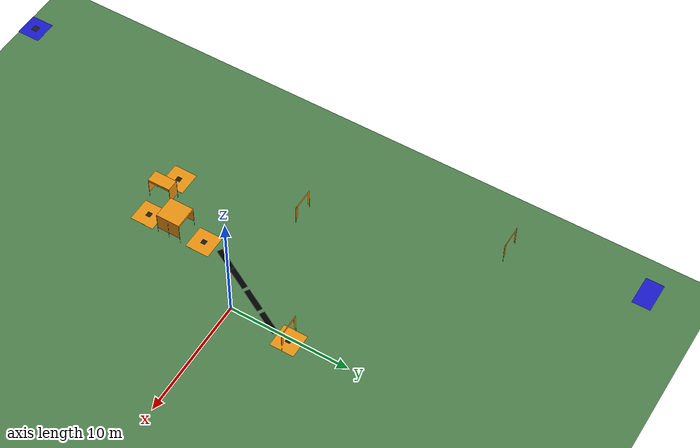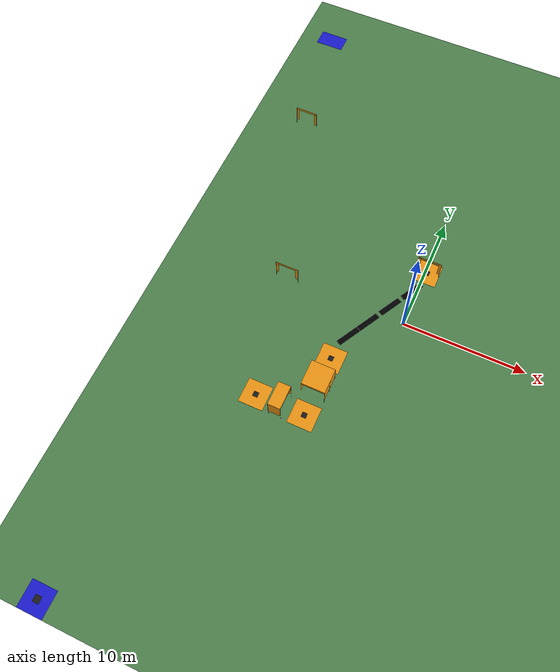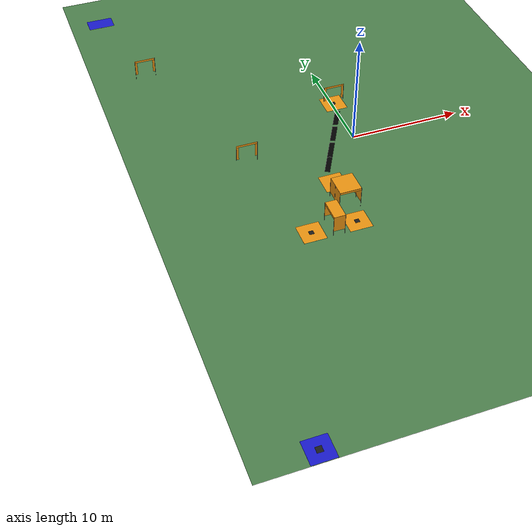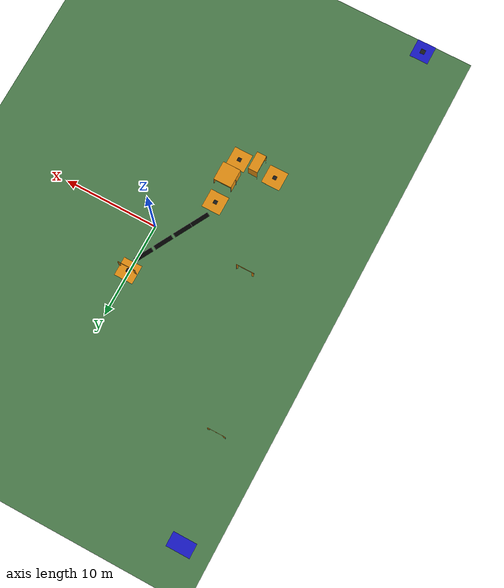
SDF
<?xml version="1.0" ?>
<sdf version="1.9">
  <world name="drone_arena">

    <light type="directional" name="sun">
      <cast_shadows>true</cast_shadows>
      <pose>0 0 15 0 0 0</pose>
      <diffuse>0.8 0.8 0.8 1</diffuse>
      <specular>0.2 0.2 0.2 1</specular>
      <direction>-0.5 0.1 -0.9</direction>
    </light>

    <model name="ground_field">
      <static>true</static>
      <link name="link">
        <collision name="collision">
          <geometry>
            <plane>
              <normal>0 0 1</normal>
              <size>40 60</size>
            </plane>
          </geometry>
        </collision>
        <visual name="visual">
          <geometry>
            <plane>
              <normal>0 0 1</normal>
              <size>40 60</size>
            </plane>
          </geometry>
          <material>
            <ambient>0.2 0.35 0.2 1</ambient>
            <diffuse>0.3 0.5 0.3 1</diffuse>
          </material>
        </visual>
      </link>
    </model>

    <model name="start_zone">
      <static>true</static>
      <pose>-15.0 -29.0 0.001 0 0 0</pose>
      <link name="link">
        <visual name="mat">
          <geometry><box><size>2.0 2.0 0.002</size></box></geometry>
          <material><ambient>0.1 0.1 0.8 1</ambient><diffuse>0.1 0.1 0.8 1</diffuse></material>
        </visual>
        <visual name="qr">
          <pose>0 0 0.002 0 0 0</pose>
          <geometry><box><size>0.5 0.5 0</size></box></geometry>
          <material><ambient>0.1 0.1 0.1 1</ambient><diffuse>0.1 0.1 0.1 1</diffuse></material>
        </visual>
      </link>
    </model>

    <model name="wp1">
      <static>true</static>
      <pose>-8.0 -10.0 0.001 0 0 0</pose>
      <link name="link">
        <visual name="mat"><geometry><box><size>2.0 2.0 0.002</size></box></geometry><material><ambient>0.914 0.573 0.067 1</ambient><diffuse>0.914 0.573 0.067 1</diffuse></material></visual>
        <visual name="qr"><pose>0 0 0.002 0 0 0</pose><geometry><box><size>0.4 0.4 0.001</size></box></geometry><material><ambient>0.1 0.1 0.1 1</ambient><diffuse>0.1 0.1 0.1 1</diffuse></material></visual>
      </link>
    </model>

    <model name="double_gate">
      <static>true</static>
      <pose>-6.0 -10.0 0 0 0 1.5708</pose>
      <link name="link">
        <visual name="p1"><pose>-0.9515 -0.5 1.0 0 0 0</pose><geometry><cylinder><radius>0.0138</radius><length>2.0</length></cylinder></geometry><material><ambient>0.4 0.4 0.4 1</ambient></material></visual>
        <visual name="p2"><pose>0.9515 -0.5 1.0 0 0 0</pose><geometry><cylinder><radius>0.0138</radius><length>2.0</length></cylinder></geometry><material><ambient>0.4 0.4 0.4 1</ambient></material></visual>
        <visual name="p3"><pose>-0.9515 0.5 1.0 0 0 0</pose><geometry><cylinder><radius>0.0138</radius><length>2.0</length></cylinder></geometry><material><ambient>0.4 0.4 0.4 1</ambient></material></visual>
        <visual name="p4"><pose>0.9515 0.5 1.0 0 0 0</pose><geometry><cylinder><radius>0.0138</radius><length>2.0</length></cylinder></geometry><material><ambient>0.4 0.4 0.4 1</ambient></material></visual>

        <visual name="f_top"><pose>0 -0.5 1.9007 0 0 0</pose><geometry><box><size>1.9031 0.01 0.1985</size></box></geometry><material><ambient>0.914 0.573 0.067 1</ambient><diffuse>0.914 0.573 0.067 1</diffuse></material></visual>
        <visual name="b_top"><pose>0 0.5 1.9007 0 0 0</pose><geometry><box><size>1.9031 0.01 0.1985</size></box></geometry><material><ambient>0.914 0.573 0.067 1</ambient><diffuse>0.914 0.573 0.067 1</diffuse></material></visual>

        <visual name="roof"><pose>0 0 2.0 0 0 0</pose><geometry><box><size>1.9031 1.0 0.005</size></box></geometry><material><ambient>0.914 0.573 0.067 1</ambient><diffuse>0.914 0.573 0.067 1</diffuse></material></visual>
        <visual name="side_left"><pose>-0.9515 0 1.25 0 0 0</pose><geometry><box><size>0.005 1.0 1.5</size></box></geometry><material><ambient>0.914 0.573 0.067 1</ambient><diffuse>0.914 0.573 0.067 1</diffuse></material></visual>
        <visual name="side_right"><pose>0.9515 0 1.25 0 0 0</pose><geometry><box><size>0.005 1.0 1.5</size></box></geometry><material><ambient>0.914 0.573 0.067 1</ambient><diffuse>0.914 0.573 0.067 1</diffuse></material></visual>
      </link>
    </model>

    <model name="wp2">
      <static>true</static>
      <pose>-4.0 -10.0 0.001 0 0 0</pose>
      <link name="link">
        <visual name="mat"><geometry><box><size>2.0 2.0 0.002</size></box></geometry><material><ambient>0.914 0.573 0.067 1</ambient><diffuse>0.914 0.573 0.067 1</diffuse></material></visual>
        <visual name="qr"><pose>0 0 0.002 0 0 0</pose><geometry><box><size>0.4 0.4 0.001</size></box></geometry><material><ambient>0.1 0.1 0.1 1</ambient><diffuse>0.1 0.1 0.1 1</diffuse></material></visual>
      </link>
    </model>

    <model name="triple_gate">
      <static>true</static>
      <pose>-4.0 -7.5 0 0 0 0</pose>
      <link name="link">
        <visual name="p1"><pose>-0.9515 -1.0 1.0 0 0 0</pose><geometry><cylinder><radius>0.0138</radius><length>2.0</length></cylinder></geometry><material><ambient>0.4 0.4 0.4 1</ambient></material></visual>
        <visual name="p2"><pose>0.9515 -1.0 1.0 0 0 0</pose><geometry><cylinder><radius>0.0138</radius><length>2.0</length></cylinder></geometry><material><ambient>0.4 0.4 0.4 1</ambient></material></visual>
        <visual name="p3"><pose>-0.9515 0.0 1.0 0 0 0</pose><geometry><cylinder><radius>0.0138</radius><length>2.0</length></cylinder></geometry><material><ambient>0.4 0.4 0.4 1</ambient></material></visual>
        <visual name="p4"><pose>0.9515 0.0 1.0 0 0 0</pose><geometry><cylinder><radius>0.0138</radius><length>2.0</length></cylinder></geometry><material><ambient>0.4 0.4 0.4 1</ambient></material></visual>
        <visual name="p5"><pose>-0.9515 1.0 1.0 0 0 0</pose><geometry><cylinder><radius>0.0138</radius><length>2.0</length></cylinder></geometry><material><ambient>0.4 0.4 0.4 1</ambient></material></visual>
        <visual name="p6"><pose>0.9515 1.0 1.0 0 0 0</pose><geometry><cylinder><radius>0.0138</radius><length>2.0</length></cylinder></geometry><material><ambient>0.4 0.4 0.4 1</ambient></material></visual>

        <visual name="f_top"><pose>0 -1.0 1.9007 0 0 0</pose><geometry><box><size>1.9031 0.01 0.1985</size></box></geometry><material><ambient>0.914 0.573 0.067 1</ambient><diffuse>0.914 0.573 0.067 1</diffuse></material></visual>
        <visual name="m_top"><pose>0 0.0 1.9007 0 0 0</pose><geometry><box><size>1.9031 0.01 0.1985</size></box></geometry><material><ambient>0.914 0.573 0.067 1</ambient><diffuse>0.914 0.573 0.067 1</diffuse></material></visual>
        <visual name="b_top"><pose>0 1.0 1.9007 0 0 0</pose><geometry><box><size>1.9031 0.01 0.1985</size></box></geometry><material><ambient>0.914 0.573 0.067 1</ambient><diffuse>0.914 0.573 0.067 1</diffuse></material></visual>

        <visual name="roof"><pose>0 0 2.0 0 0 0</pose><geometry><box><size>1.9031 2.0 0.005</size></box></geometry><material><ambient>0.914 0.573 0.067 1</ambient><diffuse>0.914 0.573 0.067 1</diffuse></material></visual>
        <visual name="side_left"><pose>-0.9515 0 1.25 0 0 0</pose><geometry><box><size>0.005 2.0 1.5</size></box></geometry><material><ambient>0.914 0.573 0.067 1</ambient><diffuse>0.914 0.573 0.067 1</diffuse></material></visual>
        <visual name="side_right"><pose>0.9515 0 1.25 0 0 0</pose><geometry><box><size>0.005 2.0 1.5</size></box></geometry><material><ambient>0.914 0.573 0.067 1</ambient><diffuse>0.914 0.573 0.067 1</diffuse></material></visual>
      </link>
    </model>

    <model name="wp3">
      <static>true</static>
      <pose>-4.0 -5.0 0 0 0 0</pose>
      <link name="link">
        <visual name="mat"><geometry><box><size>2.0 2.0 0.002</size></box></geometry><material><ambient>0.914 0.573 0.067 1</ambient><diffuse>0.914 0.573 0.067 1</diffuse></material></visual>
        <visual name="qr"><pose>0 0 0.002 0 0 0</pose><geometry><box><size>0.4 0.4 0.001</size></box></geometry><material><ambient>0.1 0.1 0.1 1</ambient><diffuse>0.1 0.1 0.1 1</diffuse></material></visual>
      </link>
    </model>

    <model name="single_gate_4">
        <static>true</static>
        <pose>0.1755 5.1155 0 0 0 0</pose>
        <link name="link">
            <visual name="pipe_l"><pose>-0.9515 0 1.0 0 0 0</pose><geometry><cylinder><radius>0.0138</radius><length>2.0</length></cylinder></geometry><material><ambient>0.4 0.4 0.4 1</ambient></material></visual>
            <visual name="pipe_r"><pose>0.9515 0 1.0 0 0 0</pose><geometry><cylinder><radius>0.0138</radius><length>2.0</length></cylinder></geometry><material><ambient>0.4 0.4 0.4 1</ambient></material></visual>
            <visual name="top_banner"><pose>0 0 1.9007 0 0 0</pose><geometry><box><size>1.9031 0.01 0.1985</size></box></geometry><material><ambient>0.914 0.573 0.067 1</ambient><diffuse>0.914 0.573 0.067 1</diffuse></material></visual>
            <visual name="banner_l"><pose>-0.8435 0 1.25 0 0 0</pose><geometry><box><size>0.216 0.01 1.5</size></box></geometry><material><ambient>0.914 0.573 0.067 1</ambient><diffuse>0.914 0.573 0.067 1</diffuse></material></visual>
            <visual name="banner_r"><pose>0.8435 0 1.25 0 0 0</pose><geometry><box><size>0.216 0.01 1.5</size></box></geometry><material><ambient>0.914 0.573 0.067 1</ambient><diffuse>0.914 0.573 0.067 1</diffuse></material></visual>
        </link>
    </model>
    <model name="wp4">
      <static>true</static>
      <pose>0.1755 5.1155 0 0 0 0</pose>
      <link name="link">
        <visual name="mat"><pose>0 0 0.001 0 0 0</pose><geometry><box><size>2.0 2.0 0.002</size></box></geometry><material><ambient>0.914 0.573 0.067 1</ambient><diffuse>0.914 0.573 0.067 1</diffuse></material></visual>
        <visual name="qr"><pose>0 0 0.002 0 0 0</pose><geometry><box><size>0.4 0.4 0.001</size></box></geometry><material><ambient>0.1 0.1 0.1 1</ambient><diffuse>0.1 0.1 0.1 1</diffuse></material></visual>
      </link>
    </model>

    <model name="gate_2">
      <static>true</static>
      <pose>-10.0 0.0 0 0 0 0</pose>
      <link name="frame">
        <visual name="pipe_l"><pose>-0.9515 0 1.0 0 0 0</pose><geometry><cylinder><radius>0.0138</radius><length>2.0</length></cylinder></geometry><material><ambient>0.4 0.4 0.4 1</ambient></material></visual>
        <visual name="pipe_r"><pose>0.9515 0 1.0 0 0 0</pose><geometry><cylinder><radius>0.0138</radius><length>2.0</length></cylinder></geometry><material><ambient>0.4 0.4 0.4 1</ambient></material></visual>
        <visual name="top_banner"><pose>0 0 1.9007 0 0 0</pose><geometry><box><size>1.9031 0.01 0.1985</size></box></geometry><material><ambient>0.914 0.573 0.067 1</ambient><diffuse>0.914 0.573 0.067 1</diffuse></material></visual>
        <visual name="banner_l"><pose>-0.8435 0 1.25 0 0 0</pose><geometry><box><size>0.216 0.01 1.5</size></box></geometry><material><ambient>0.914 0.573 0.067 1</ambient><diffuse>0.914 0.573 0.067 1</diffuse></material></visual>
        <visual name="banner_r"><pose>0.8435 0 1.25 0 0 0</pose><geometry><box><size>0.216 0.01 1.5</size></box></geometry><material><ambient>0.914 0.573 0.067 1</ambient><diffuse>0.914 0.573 0.067 1</diffuse></material></visual>
      </link>
    </model>

    <model name="gate_1">
      <static>true</static>
      <pose>-15.0 15.0 0 0 0 0</pose>
      <link name="frame">
        <visual name="pipe_l"><pose>-0.9515 0 1.0 0 0 0</pose><geometry><cylinder><radius>0.0138</radius><length>2.0</length></cylinder></geometry><material><ambient>0.4 0.4 0.4 1</ambient></material></visual>
        <visual name="pipe_r"><pose>0.9515 0 1.0 0 0 0</pose><geometry><cylinder><radius>0.0138</radius><length>2.0</length></cylinder></geometry><material><ambient>0.4 0.4 0.4 1</ambient></material></visual>
        <visual name="top_banner"><pose>0 0 1.9007 0 0 0</pose><geometry><box><size>1.9031 0.01 0.1985</size></box></geometry><material><ambient>0.914 0.573 0.067 1</ambient><diffuse>0.914 0.573 0.067 1</diffuse></material></visual>
        <visual name="banner_l"><pose>-0.8435 0 1.25 0 0 0</pose><geometry><box><size>0.216 0.01 1.5</size></box></geometry><material><ambient>0.914 0.573 0.067 1</ambient><diffuse>0.914 0.573 0.067 1</diffuse></material></visual>
        <visual name="banner_r"><pose>0.8435 0 1.25 0 0 0</pose><geometry><box><size>0.216 0.01 1.5</size></box></geometry><material><ambient>0.914 0.573 0.067 1</ambient><diffuse>0.914 0.573 0.067 1</diffuse></material></visual>
      </link>
    </model>

    <model name="landing_pad">
      <static>true</static>
      <pose>-17.0 25.5 0.001 0 0 0</pose>
      <link name="link">
        <visual name="pad">
          <geometry><box><size>2.5 1.5 0.002</size></box></geometry>
          <material><ambient>0.1 0.1 0.8 1</ambient><diffuse>0.1 0.1 0.8 1</diffuse></material>
        </visual>
      </link>
    </model>
    <model name="black_line1">
        <static>true</static>
        <pose>-3.5 -2.7 0 0 0 -0.5</pose>
        <link name="link">
            <visual name="visual">
                <geometry>
                    <box>
                        <size>0.45 2.0 0.001</size>
                    </box>
                </geometry>
                <material>
                    <ambient>0 0 0 1</ambient>
                    <diffuse>0 0 0 1</diffuse>
                    <specular>0.1 0.1 0.1 1</specular>
                </material>
            </visual>
        </link>
    </model>
    <model name="black_line2">
        <static>true</static>
        <pose>-2.5609 -0.9849 0 0 0 -0.5</pose>
        <link name="link">
            <visual name="visual">
                <geometry>
                    <box>
                        <size>0.45 2.0 0.001</size>
                    </box>
                </geometry>
                <material>
                    <ambient>0 0 0 1</ambient>
                    <diffuse>0 0 0 1</diffuse>
                    <specular>0.1 0.1 0.1 1</specular>
                </material>
            </visual>
        </link>
    </model>
    <model name="black_line3">
        <static>true</static>
        <pose>-1.4691 1.0128 0 0 0 -0.5</pose>
        <link name="link">
            <visual name="visual">
                <geometry>
                    <box>
                        <size>0.45 2.0 0.001</size>
                    </box>
                </geometry>
                <material>
                    <ambient>0 0 0 1</ambient>
                    <diffuse>0 0 0 1</diffuse>
                    <specular>0.1 0.1 0.1 1</specular>
                </material>
            </visual>
        </link>
    </model>
    <model name="black_line4">
        <static>true</static>
        <pose>-0.3667 3.0315 0 0 0 -0.5</pose>
        <link name="link">
            <visual name="visual">
                <geometry>
                    <box>
                        <size>0.45 2.0 0.001</size>
                    </box>
                </geometry>
                <material>
                    <ambient>0 0 0 1</ambient>
                    <diffuse>0 0 0 1</diffuse>
                    <specular>0.1 0.1 0.1 1</specular>
                </material>
            </visual>
        </link>
    </model>
  </world>
</sdf>
